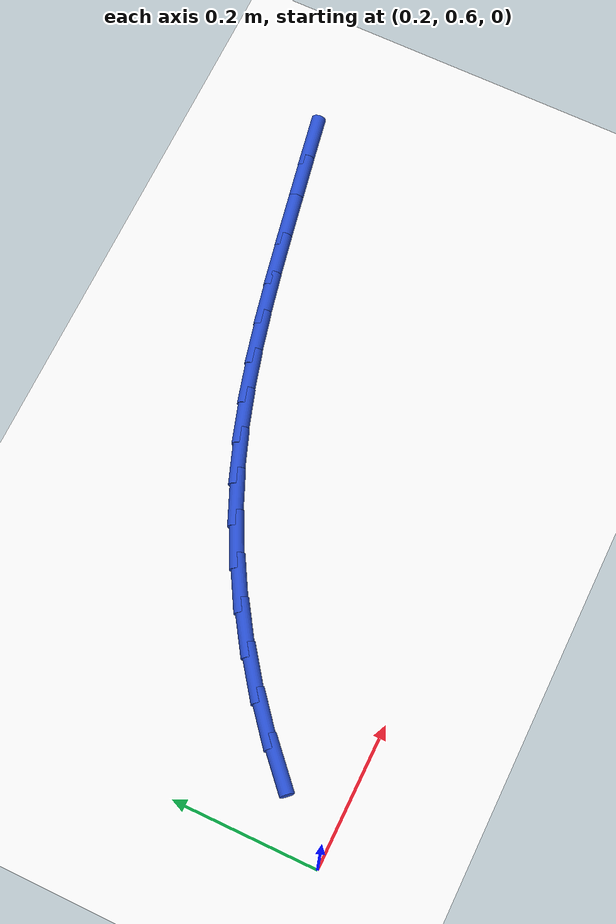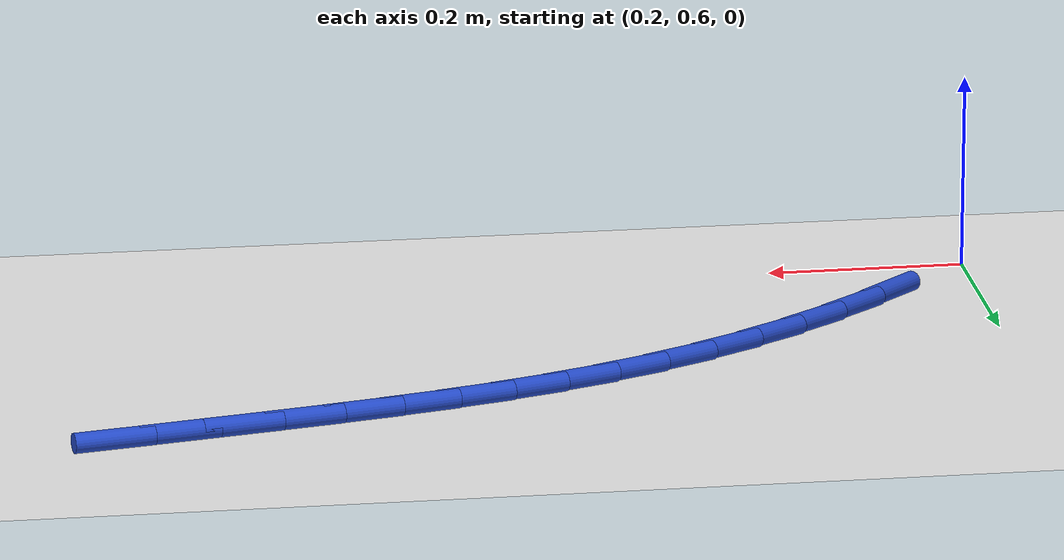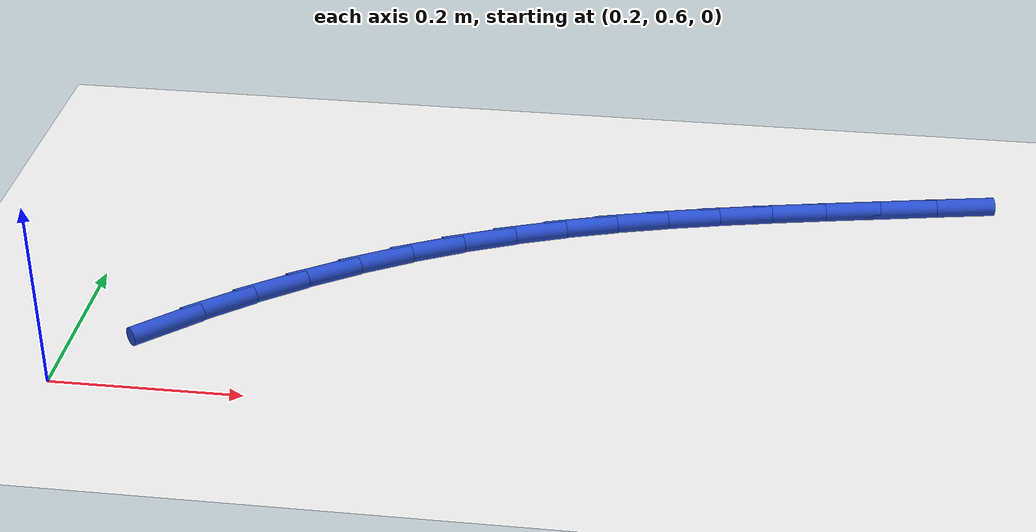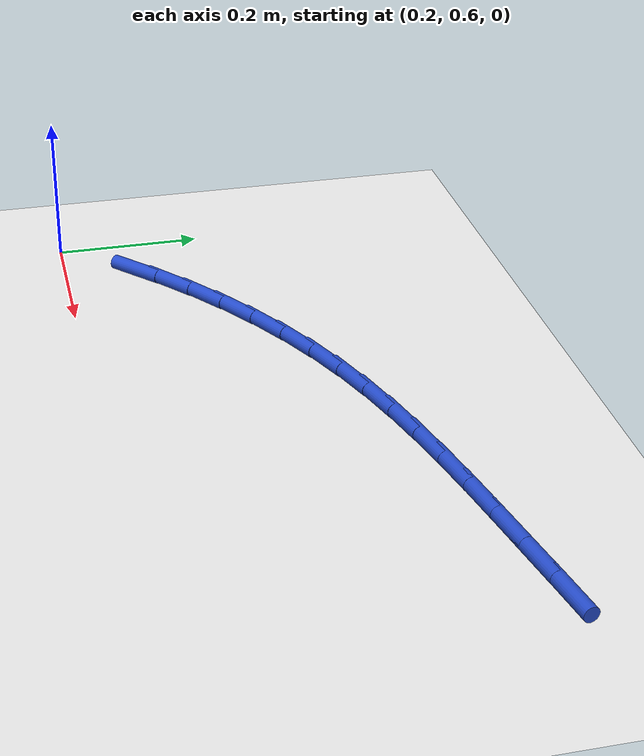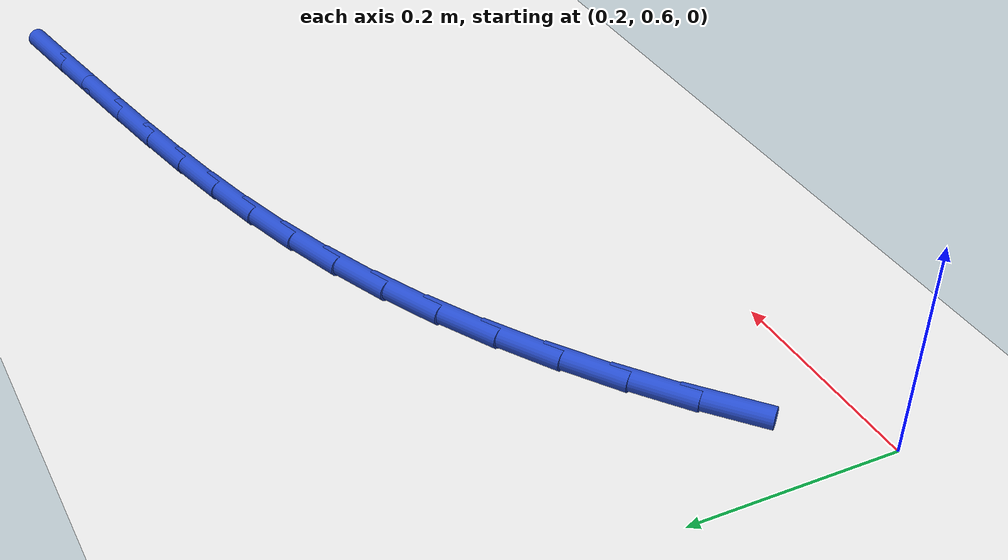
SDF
<sdf version="1.6">
 <world name="default">
  <model name="ground_plane">
   <static>1</static>
   <link name="link">
    <collision name="collision">
     <geometry><plane><normal>0 0 1</normal><size>100 100</size></plane></geometry>
     <surface><friction><ode><mu>100</mu><mu2>50</mu2></ode></friction></surface>
    </collision>
    <visual name="visual">
     <cast_shadows>0</cast_shadows>
     <geometry><plane><normal>0 0 1</normal><size>100 100</size></plane></geometry>
     <material>
      <script><uri>file://media/materials/scripts/gazebo.material</uri><name>Gazebo/WhiteGlow</name></script>
     </material>
    </visual>
   </link>
  </model>
  <model name="line">
   <link name="link_13">
    <pose>0.29434806281239856 0.699723272423855 0.01 0 1.57 0.738793082408159</pose>
    <collision name="collision">
     <geometry><cylinder><radius>0.01</radius><length>0.08</length></cylinder></geometry>
    </collision>
    <visual name="visual">
     <material>
      <script><name>Gazebo/Blue</name><uri>file://media/materials/scripts/gazebo.material</uri></script>
     </material>
     <geometry><cylinder><radius>0.01</radius><length>0.08</length></cylinder></geometry>
    </visual>
   </link>
   <link name="link_14">
    <pose>0.33913867368425077 0.7405220905062352 0.01 0 1.57 0.6827254944868277</pose>
    <collision name="collision">
     <geometry><cylinder><radius>0.01</radius><length>0.08</length></cylinder></geometry>
    </collision>
    <visual name="visual">
     <material>
      <script><name>Gazebo/Blue</name><uri>file://media/materials/scripts/gazebo.material</uri></script>
     </material>
     <geometry><cylinder><radius>0.01</radius><length>0.08</length></cylinder></geometry>
    </visual>
   </link>
   <link name="link_15">
    <pose>0.3860030343546813 0.7786312105133184 0.01 0 1.57 0.6272333989112535</pose>
    <collision name="collision">
     <geometry><cylinder><radius>0.01</radius><length>0.08</length></cylinder></geometry>
    </collision>
    <visual name="visual">
     <material>
      <script><name>Gazebo/Blue</name><uri>file://media/materials/scripts/gazebo.material</uri></script>
     </material>
     <geometry><cylinder><radius>0.01</radius><length>0.08</length></cylinder></geometry>
    </visual>
   </link>
   <link name="link_16">
    <pose>0.434646061096032 0.8138918547100521 0.01 0 1.57 0.5717487353980238</pose>
    <collision name="collision">
     <geometry><cylinder><radius>0.01</radius><length>0.08</length></cylinder></geometry>
    </collision>
    <visual name="visual">
     <material>
      <script><name>Gazebo/Blue</name><uri>file://media/materials/scripts/gazebo.material</uri></script>
     </material>
     <geometry><cylinder><radius>0.01</radius><length>0.08</length></cylinder></geometry>
    </visual>
   </link>
   <link name="link_17">
    <pose>0.4847726701806442 0.8461452453613836 0.01 0 1.57 0.5156787804299308</pose>
    <collision name="collision">
     <geometry><cylinder><radius>0.01</radius><length>0.08</length></cylinder></geometry>
    </collision>
    <visual name="visual">
     <material>
      <script><name>Gazebo/Blue</name><uri>file://media/materials/scripts/gazebo.material</uri></script>
     </material>
     <geometry><cylinder><radius>0.01</radius><length>0.08</length></cylinder></geometry>
    </visual>
   </link>
   <link name="link_18">
    <pose>0.5360877778808599 0.8752326047322604 0.01 0 1.57 0.45839941141204515</pose>
    <collision name="collision">
     <geometry><cylinder><radius>0.01</radius><length>0.08</length></cylinder></geometry>
    </collision>
    <visual name="visual">
     <material>
      <script><name>Gazebo/Blue</name><uri>file://media/materials/scripts/gazebo.material</uri></script>
     </material>
     <geometry><cylinder><radius>0.01</radius><length>0.08</length></cylinder></geometry>
    </visual>
   </link>
   <link name="link_19">
    <pose>0.588296415422472 0.9009953152234909 0.01 0 1.57 0.40089111233265345</pose>
    <collision name="collision">
     <geometry><cylinder><radius>0.01</radius><length>0.08</length></cylinder></geometry>
    </collision>
    <visual name="visual">
     <material>
      <script><name>Gazebo/Blue</name><uri>file://media/materials/scripts/gazebo.material</uri></script>
     </material>
     <geometry><cylinder><radius>0.01</radius><length>0.08</length></cylinder></geometry>
    </visual>
   </link>
   <link name="link_20">
    <pose>0.6412094441925643 0.9234221859013222 0.01 0 1.57 0.34814249673832187</pose>
    <collision name="collision">
     <geometry><cylinder><radius>0.01</radius><length>0.08</length></cylinder></geometry>
    </collision>
    <visual name="visual">
     <material>
      <script><name>Gazebo/Blue</name><uri>file://media/materials/scripts/gazebo.material</uri></script>
     </material>
     <geometry><cylinder><radius>0.01</radius><length>0.08</length></cylinder></geometry>
    </visual>
   </link>
   <link name="link_21">
    <pose>0.6949392563855784 0.9429220732070969 0.01 0 1.57 0.3021932119834196</pose>
    <collision name="collision">
     <geometry><cylinder><radius>0.01</radius><length>0.08</length></cylinder></geometry>
    </collision>
    <visual name="visual">
     <material>
      <script><name>Gazebo/Blue</name><uri>file://media/materials/scripts/gazebo.material</uri></script>
     </material>
     <geometry><cylinder><radius>0.01</radius><length>0.08</length></cylinder></geometry>
    </visual>
   </link>
   <link name="link_22">
    <pose>0.7496515917024729 0.9599781493055703 0.01 0 1.57 0.26392999178964277</pose>
    <collision name="collision">
     <geometry><cylinder><radius>0.01</radius><length>0.08</length></cylinder></geometry>
    </collision>
    <visual name="visual">
     <material>
      <script><name>Gazebo/Blue</name><uri>file://media/materials/scripts/gazebo.material</uri></script>
     </material>
     <geometry><cylinder><radius>0.01</radius><length>0.08</length></cylinder></geometry>
    </visual>
   </link>
   <link name="link_23">
    <pose>0.8055121898442056 0.9750735863614969 0.01 0 1.57 0.23382544283630574</pose>
    <collision name="collision">
     <geometry><cylinder><radius>0.01</radius><length>0.08</length></cylinder></geometry>
    </collision>
    <visual name="visual">
     <material>
      <script><name>Gazebo/Blue</name><uri>file://media/materials/scripts/gazebo.material</uri></script>
     </material>
     <geometry><cylinder><radius>0.01</radius><length>0.08</length></cylinder></geometry>
    </visual>
   </link>
   <link name="link_24">
    <pose>0.8626867905117355 0.9886915565396324 0.01 0 1.57 0.21198786075886702</pose>
    <collision name="collision">
     <geometry><cylinder><radius>0.01</radius><length>0.08</length></cylinder></geometry>
    </collision>
    <visual name="visual">
     <material>
      <script><name>Gazebo/Blue</name><uri>file://media/materials/scripts/gazebo.material</uri></script>
     </material>
     <geometry><cylinder><radius>0.01</radius><length>0.08</length></cylinder></geometry>
    </visual>
   </link>
   <link name="link_25">
    <pose>0.9213411334060208 1.001315232004732 0.01 0 1.57 0.19823398430836617</pose>
    <collision name="collision">
     <geometry><cylinder><radius>0.01</radius><length>0.08</length></cylinder></geometry>
    </collision>
    <visual name="visual">
     <material>
      <script><name>Gazebo/Blue</name><uri>file://media/materials/scripts/gazebo.material</uri></script>
     </material>
     <geometry><cylinder><radius>0.01</radius><length>0.08</length></cylinder></geometry>
    </visual>
   </link>
   <link name="link_26">
    <pose>0.9816409582280199 1.0134277849215514 0.01 0 1.57 0.19216366285473746</pose>
    <collision name="collision">
     <geometry><cylinder><radius>0.01</radius><length>0.08</length></cylinder></geometry>
    </collision>
    <visual name="visual">
     <material>
      <script><name>Gazebo/Blue</name><uri>file://media/materials/scripts/gazebo.material</uri></script>
     </material>
     <geometry><cylinder><radius>0.01</radius><length>0.08</length></cylinder></geometry>
    </visual>
   </link>
   <link name="link_27">
    <pose>1.0437520046786914 1.0255123874548453 0.01 0 1.57 0.19195315065200924</pose>
    <collision name="collision">
     <geometry><cylinder><radius>0.01</radius><length>0.08</length></cylinder></geometry>
    </collision>
    <visual name="visual">
     <material>
      <script><name>Gazebo/Blue</name><uri>file://media/materials/scripts/gazebo.material</uri></script>
     </material>
     <geometry><cylinder><radius>0.01</radius><length>0.08</length></cylinder></geometry>
    </visual>
   </link>
   <link name="link_28">
    <pose>1.1077721288098992 1.0379544420443607 0.01 0 1.57 0.18587792925007962</pose>
    <collision name="collision">
     <geometry><cylinder><radius>0.01</radius><length>0.08</length></cylinder></geometry>
    </collision>
    <visual name="visual">
     <material>
      <script><name>Gazebo/Blue</name><uri>file://media/materials/scripts/gazebo.material</uri></script>
     </material>
     <geometry><cylinder><radius>0.01</radius><length>0.08</length></cylinder></geometry>
    </visual>
   </link>
  </model>
 </world>
</sdf>
